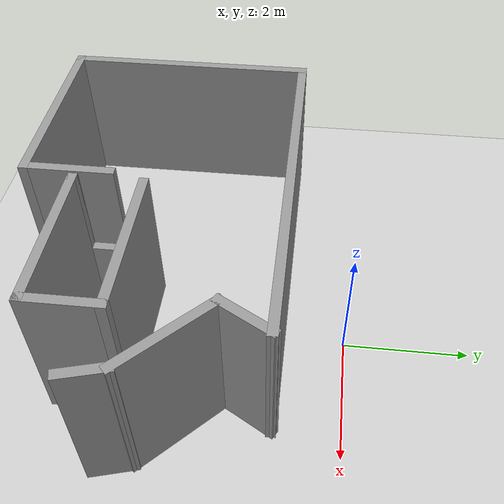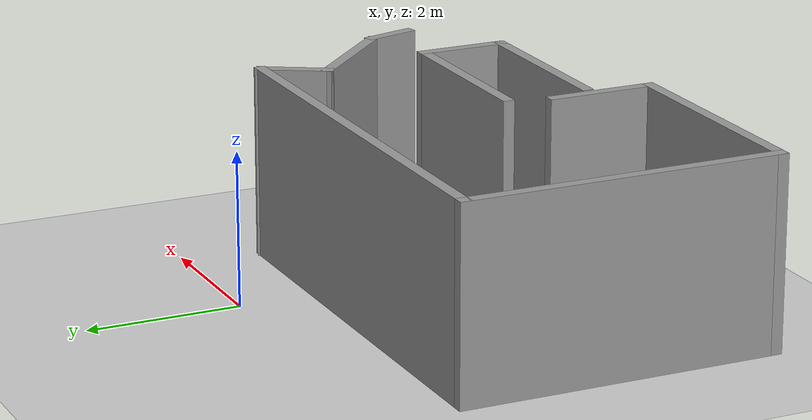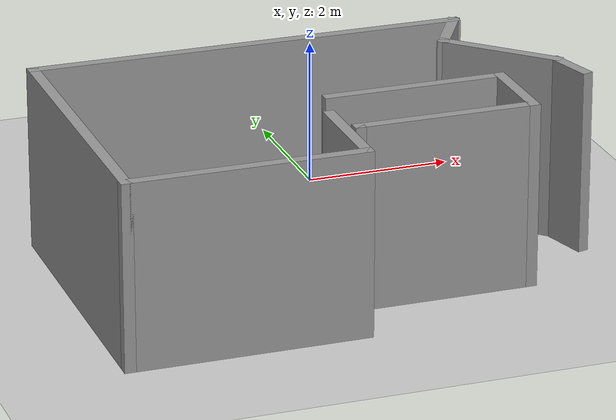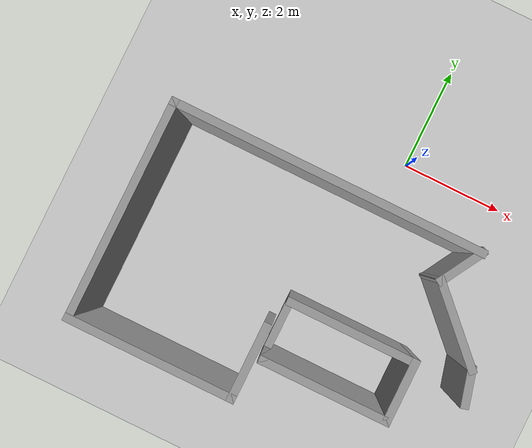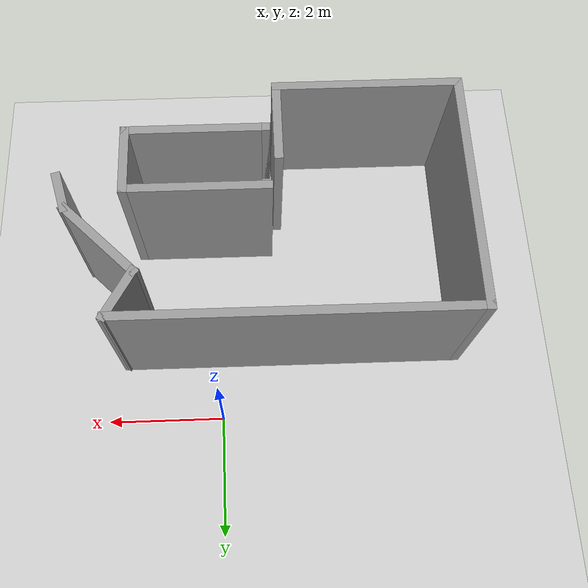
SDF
<sdf version="1.6">
 <world name="default">
  <light name="sun" type="directional">
   <pose>0 0 10 0 -0 0</pose>
   <diffuse>0.8 0.8 0.8 1</diffuse>
   <specular>0.1 0.1 0.1 1</specular>
   <attenuation>
    <range>1000</range>
    <constant>0.9</constant>
    <linear>0.01</linear>
    <quadratic>0.001</quadratic>
   </attenuation>
   <direction>-0.5 0.5 -1</direction>
  </light>
  <model name="ground_plane">
   <static>1</static>
   <link name="link">
    <collision name="collision">
     <geometry><plane><normal>0 0 1</normal><size>100 100</size></plane></geometry>
     <surface><friction><ode><mu>100</mu><mu2>50</mu2></ode></friction></surface>
    </collision>
    <visual name="visual">
     <cast_shadows>0</cast_shadows>
     <geometry><plane><normal>0 0 1</normal><size>100 100</size></plane></geometry>
     <material>
      <script><uri>file://media/materials/scripts/gazebo.material</uri><name>Gazebo/Grey</name></script>
     </material>
    </visual>
   </link>
  </model>
  <gravity>0 0 -9.8</gravity>
  <magnetic_field>6e-06 2.3e-05 -4.2e-05</magnetic_field>
  <atmosphere type="adiabatic"/>
  <physics name="default_physics" default="0" type="ode">
   <max_step_size>0.001</max_step_size>
   <real_time_factor>1</real_time_factor>
   <real_time_update_rate>1000</real_time_update_rate>
  </physics>
  <scene><ambient>0.4 0.4 0.4 1</ambient><background>0.7 0.7 0.7 1</background><shadows>1</shadows></scene>
  <spherical_coordinates>
   <surface_model>EARTH_WGS84</surface_model>
   <latitude_deg>0</latitude_deg>
   <longitude_deg>0</longitude_deg>
   <elevation>0</elevation>
   <heading_deg>0</heading_deg>
  </spherical_coordinates>
  <model name="sim_simple">
   <pose>0.295 -3.77 0 0 -0 0</pose>
   <link name="Wall_0">
    <collision name="Wall_0_Collision">
     <geometry><box><size>2.5 0.15 2.5</size></box></geometry>
     <pose>0 0 1.25 0 -0 0</pose>
    </collision>
    <visual name="Wall_0_Visual">
     <pose>0 0 1.25 0 -0 0</pose>
     <geometry><box><size>2.5 0.15 2.5</size></box></geometry>
     <material>
      <script><uri>file://media/materials/scripts/gazebo.material</uri><name>Gazebo/Grey</name></script>
      <ambient>1 1 1 1</ambient>
     </material>
    </visual>
    <pose>0 -0.55 0 0 -0 0</pose>
   </link>
   <link name="Wall_1">
    <collision name="Wall_1_Collision">
     <geometry><box><size>0.15 0.15 2.5</size></box></geometry>
     <pose>0 0 1.25 0 -0 0</pose>
    </collision>
    <visual name="Wall_1_Visual">
     <pose>0 0 1.25 0 -0 0</pose>
     <geometry><box><size>0.15 0.15 2.5</size></box></geometry>
     <material>
      <script><uri>file://media/materials/scripts/gazebo.material</uri><name>Gazebo/Grey</name></script>
      <ambient>1 1 1 1</ambient>
     </material>
    </visual>
    <pose>1.175 -0.55 0 0 -0 0</pose>
   </link>
   <link name="Wall_2">
    <collision name="Wall_2_Collision">
     <geometry><box><size>0.15 0.15 2.5</size></box></geometry>
     <pose>0 0 1.25 0 -0 0</pose>
    </collision>
    <visual name="Wall_2_Visual">
     <pose>0 0 1.25 0 -0 0</pose>
     <geometry><box><size>0.15 0.15 2.5</size></box></geometry>
     <material>
      <script><uri>file://media/materials/scripts/gazebo.material</uri><name>Gazebo/Grey</name></script>
      <ambient>1 1 1 1</ambient>
     </material>
    </visual>
    <pose>1.175 -0.55 0 0 -0 0</pose>
   </link>
   <link name="Wall_4">
    <collision name="Wall_4_Collision">
     <geometry><box><size>1.25 0.15 2.5</size></box></geometry>
     <pose>0 0 1.25 0 -0 0</pose>
    </collision>
    <visual name="Wall_4_Visual">
     <pose>0 0 1.25 0 -0 0</pose>
     <geometry><box><size>1.25 0.15 2.5</size></box></geometry>
     <material>
      <script><uri>file://media/materials/scripts/gazebo.material</uri><name>Gazebo/Grey</name></script>
      <ambient>1 1 1 1</ambient>
     </material>
    </visual>
    <pose>1.175 0 0 0 -0 1.5708</pose>
   </link>
   <link name="Wall_5">
    <collision name="Wall_5_Collision">
     <geometry><box><size>2.5 0.15 2.5</size></box></geometry>
     <pose>0 0 1.25 0 -0 0</pose>
    </collision>
    <visual name="Wall_5_Visual">
     <pose>0 0 1.25 0 -0 0</pose>
     <geometry><box><size>2.5 0.15 2.5</size></box></geometry>
     <material>
      <script><uri>file://media/materials/scripts/gazebo.material</uri><name>Gazebo/Grey</name></script>
      <ambient>1 1 1 1</ambient>
     </material>
    </visual>
    <pose>0 0.55 0 0 -0 3.14159</pose>
   </link>
   <link name="Wall_6">
    <collision name="Wall_6_Collision">
     <geometry><box><size>1.25 0.15 1</size></box></geometry>
     <pose>0 0 0.5 0 -0 0</pose>
    </collision>
    <visual name="Wall_6_Visual">
     <pose>0 0 0.5 0 -0 0</pose>
     <geometry><box><size>1.25 0.15 1</size></box></geometry>
     <material>
      <script><uri>file://media/materials/scripts/gazebo.material</uri><name>Gazebo/Grey</name></script>
      <ambient>1 1 1 1</ambient>
     </material>
    </visual>
    <pose>-1.175 0 0 0 0 -1.5708</pose>
   </link>
   <link name="Wall_7">
    <collision name="Wall_7_Collision">
     <geometry><box><size>0.15 0.15 2.5</size></box></geometry>
     <pose>0 0 1.25 0 -0 0</pose>
    </collision>
    <visual name="Wall_7_Visual">
     <pose>0 0 1.25 0 -0 0</pose>
     <geometry><box><size>0.15 0.15 2.5</size></box></geometry>
     <material>
      <script><uri>file://media/materials/scripts/gazebo.material</uri><name>Gazebo/Grey</name></script>
      <ambient>1 1 1 1</ambient>
     </material>
    </visual>
    <pose>-1.175 -0.55 0 0 -0 0</pose>
   </link>
   <static>1</static>
  </model>
  <model name="test">
   <pose>-0.805741 -3.06627 0 0 -0 0</pose>
   <link name="Wall_0">
    <collision name="Wall_0_Collision">
     <geometry><box><size>1.5 0.15 2.5</size></box></geometry>
     <pose>0 0 1.25 0 -0 0</pose>
    </collision>
    <visual name="Wall_0_Visual">
     <pose>0 0 1.25 0 -0 0</pose>
     <geometry><box><size>1.5 0.15 2.5</size></box></geometry>
     <material>
      <script><uri>file://media/materials/scripts/gazebo.material</uri><name>Gazebo/Grey</name></script>
      <ambient>1 1 1 1</ambient>
     </material>
    </visual>
    <pose>-0.264259 -1.38873 0 0 0 -1.5708</pose>
   </link>
   <link name="Wall_1">
    <collision name="Wall_1_Collision">
     <geometry><box><size>3.25 0.15 2.5</size></box></geometry>
     <pose>0 0 1.25 0 -0 0</pose>
    </collision>
    <visual name="Wall_1_Visual">
     <pose>0 0 1.25 0 -0 0</pose>
     <geometry><box><size>3.25 0.15 2.5</size></box></geometry>
     <material>
      <script><uri>file://media/materials/scripts/gazebo.material</uri><name>Gazebo/Grey</name></script>
      <ambient>1 1 1 1</ambient>
     </material>
    </visual>
    <pose>-1.81426 -2.06373 0 0 -0 3.14159</pose>
   </link>
   <link name="Wall_2">
    <collision name="Wall_2_Collision">
     <geometry><box><size>4.25 0.15 2.5</size></box></geometry>
     <pose>0 0 1.25 0 -0 0</pose>
    </collision>
    <visual name="Wall_2_Visual">
     <pose>0 0 1.25 0 -0 0</pose>
     <geometry><box><size>4.25 0.15 2.5</size></box></geometry>
     <material>
      <script><uri>file://media/materials/scripts/gazebo.material</uri><name>Gazebo/Grey</name></script>
      <ambient>1 1 1 1</ambient>
     </material>
    </visual>
    <pose>-3.36426 -0.013726 0 0 -0 1.5708</pose>
   </link>
   <link name="Wall_3">
    <collision name="Wall_3_Collision">
     <geometry><box><size>6 0.15 2.5</size></box></geometry>
     <pose>0 0 1.25 0 -0 0</pose>
    </collision>
    <visual name="Wall_3_Visual">
     <pose>0 0 1.25 0 -0 0</pose>
     <geometry><box><size>6 0.15 2.5</size></box></geometry>
     <material>
      <script><uri>file://media/materials/scripts/gazebo.material</uri><name>Gazebo/Grey</name></script>
      <ambient>1 1 1 1</ambient>
     </material>
    </visual>
    <pose>-0.439259 2.03627 0 0 -0 0</pose>
   </link>
   <link name="Wall_4">
    <collision name="Wall_4_Collision">
     <geometry><box><size>1 0.15 2.5</size></box></geometry>
     <pose>0 0 1.25 0 -0 0</pose>
    </collision>
    <visual name="Wall_4_Visual">
     <pose>0 0 1.25 0 -0 0</pose>
     <geometry><box><size>1 0.15 2.5</size></box></geometry>
     <material>
      <script><uri>file://media/materials/scripts/gazebo.material</uri><name>Gazebo/Grey</name></script>
      <ambient>1 1 1 1</ambient>
     </material>
    </visual>
    <pose>2.27324 1.66821 0 0 0 -2.0944</pose>
   </link>
   <link name="Wall_5">
    <collision name="Wall_5_Collision">
     <geometry><box><size>1.75 0.15 2.5</size></box></geometry>
     <pose>0 0 1.25 0 -0 0</pose>
    </collision>
    <visual name="Wall_5_Visual">
     <pose>0 0 1.25 0 -0 0</pose>
     <geometry><box><size>1.75 0.15 2.5</size></box></geometry>
     <material>
      <script><uri>file://media/materials/scripts/gazebo.material</uri><name>Gazebo/Grey</name></script>
      <ambient>1 1 1 1</ambient>
     </material>
    </visual>
    <pose>2.62643 0.734467 0 0 0 -0.785398</pose>
   </link>
   <link name="Wall_6">
    <collision name="Wall_6_Collision">
     <geometry><box><size>0.75 0.15 2.5</size></box></geometry>
     <pose>0 0 1.25 0 -0 0</pose>
    </collision>
    <visual name="Wall_6_Visual">
     <pose>0 0 1.25 0 -0 0</pose>
     <geometry><box><size>0.75 0.15 2.5</size></box></geometry>
     <material>
      <script><uri>file://media/materials/scripts/gazebo.material</uri><name>Gazebo/Grey</name></script>
      <ambient>1 1 1 1</ambient>
     </material>
    </visual>
    <pose>3.26976 -0.120996 0 0 0 -1.309</pose>
   </link>
   <static>1</static>
  </model>
 </world>
</sdf>
